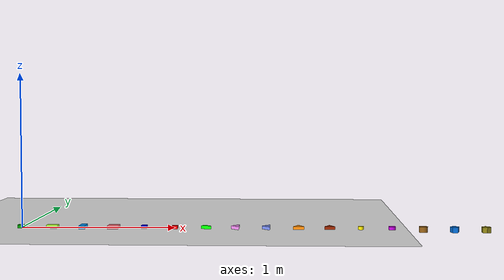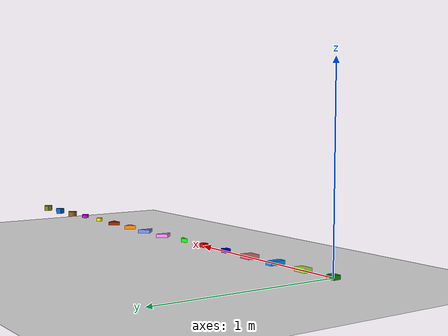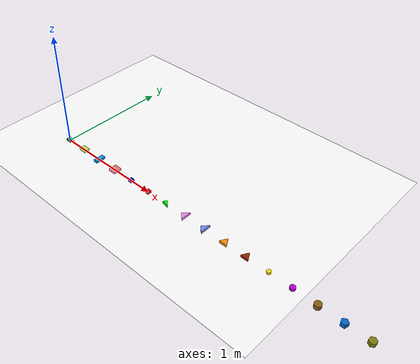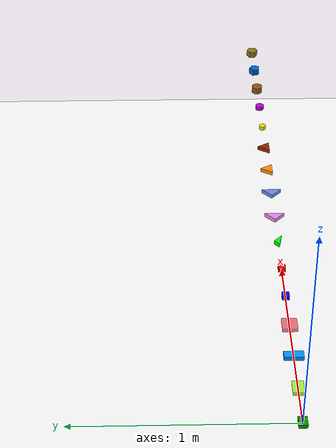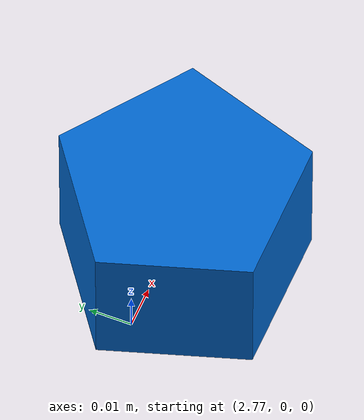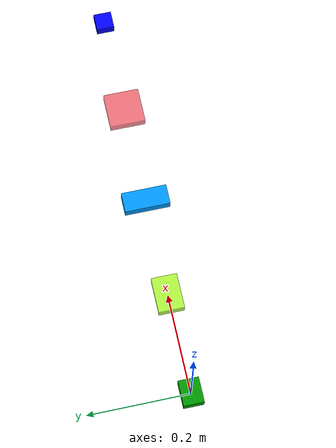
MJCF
<mujoco model="multi_objects">
    <compiler angle="radian" meshdir="meshes_mujoco/" />
    <size njmax="2000" nconmax="500" />
	<option timestep="0.002">
		<flag warmstart="enable"></flag>
	</option>
    <option gravity="0 0 -9.8"/>

    <asset>
        <mesh name="cylinder_0" file="cylinder_0.stl" />
        <mesh name="cylinder_1" file="cylinder_1.stl" />
        <mesh name="cylinder_2" file="cylinder_2.stl" />
        <mesh name="triangular_0" file="triangular_0.stl" />
        <mesh name="triangular_1" file="triangular_1.stl" />
        <mesh name="triangular_2" file="triangular_2.stl" />
        <mesh name="pentagonal" file="pentagonal.stl" />
        <mesh name="hexagonal" file="hexagonal.stl" />

        <!--Textures-->
        <texture name="floor_tex"   type="2d"       builtin="flat" rgb1="1 1 1" rgb2=".1 .2 .3" width="100" height="100" />

        <!--Materials-->
        <material name='floor_mat'      texture="floor_tex"  shininess="0.1" texrepeat="10 10" specular="0.7"  reflectance="0" />
    </asset>
    <worldbody>
        <!--Lighting parameters-->
        <light name="light3" mode="targetbody" target="box_link" directional="true" pos="1 1 3" />

        <!--Floor Property-->
        <geom name='floor' material="floor_mat" pos='0 0 0' size='2.5 2.5 0.1'  type='plane' />

        <body name="box_link" pos="0 0 0.435"/>
        <!--CUBE-->
        <body name="object_0" pos="0.0 0.0 0.0">
            <joint name="target_0_joint" type="free" limited="false" damping="0" armature="0."/>
            <geom name="target_0" pos="0 0 0" size="0.025 0.02 0.0175" type="box"
                rgba="0 0.6 0 1" condim="3" mass="0.02"
                solimp="0.9 0.95 0.001" solref="0.02 1.0" friction="0.1 0.1 0.002"/>
        </body>

        <body name="object_1" pos="0.2 0.0 0.0">
            <joint name="target_1_joint" type="free" limited="false" damping="0" armature="0."/>
            <geom name="target_1" pos="0 0 0" size="0.035 0.025 0.0175" type="box"
                rgba="0.6784 1.0 0.1843 0.87" condim="3" mass="0.02"
                solimp="0.9 0.95 0.001" solref="0.02 1.0" friction="0.1 0.1 0.002"/>
        </body>

        <body name="object_2" pos="0.4 0.0 0.0">
            <joint name="target_2_joint" type="free" limited="false" damping="0" armature="0."/>
            <geom name="target_2" pos="0 0 0" size="0.02 0.045 0.0175" type="box"
                rgba="0.0 0.6 1 1" condim="3" mass="0.02"
                solimp="0.9 0.95 0.001" solref="0.02 1.0" friction="0.1 0.1 0.002"/>
        </body>

        <body name="object_3" pos="0.6 0.0 0.0">
            <joint name="target_3_joint" type="free" limited="false" damping="0" armature="0."/>
            <geom name="target_3" pos="0 0 0" size="0.035 0.035 0.0175" type="box"
                rgba="0.95 0.25 0.3 0.7" condim="3" mass="0.02"
                solimp="0.9 0.95 0.001" solref="0.02 1.0" friction="0.1 0.1 0.002"/>
        </body>

        <body name="object_4" pos="0.8 0.0 0.0">
            <joint name="target_4_joint" type="free" limited="false" damping="0" armature="0."/>
            <geom name="target_4" pos="0 0 0" size="0.0175 0.0175 0.0175" type="box"
                rgba="0 0 1.0 1" condim="3" mass="0.02"
                solimp="0.9 0.95 0.001" solref="0.02 1.0" friction="0.1 0.1 0.002"/>
        </body>

        <body name="object_5" pos="1.0 0.0 0.0">
            <joint name="target_5_joint" type="free" limited="false" damping="0" armature="0."/>
            <geom name="target_5" pos="0 0 0" size="0.0175 0.0175 0.0175" type="box"
                rgba="1 0 0 1" condim="3" mass="0.02"
                solimp="0.9 0.95 0.001" solref="0.02 1.0" friction="0.1 0.1 0.002"/>
        </body>

        <body name="object_6" pos="1.2 0.0 0.0">
          <joint name="target_6_joint" type="free" limited="false" damping="0" armature="0."/>
          <inertial pos="0 0 0" mass="0.02" diaginertia="0.01 0.01 8e-4" />
          <geom pos="0 0 0" mesh="triangular_0" type="mesh" conaffinity="1" condim="6"
              rgba="0 1 0 1" friction="0.1 0.1 0.002" solref="0.02 1.0"/>
        </body>

        <body name="object_7" pos="1.4 0.0 0.0">
          <joint name="target_7_joint" type="free" limited="false" damping="0" armature="0."/>
          <inertial pos="0 0 0" mass="0.02" diaginertia="0.01 0.01 8e-4" />
          <geom pos="0 0 0" mesh="triangular_1" type="mesh" conaffinity="1" condim="6"
              rgba="0.93 0.545 0.93 1" friction="0.1 0.1 0.002" solref="0.02 1.0"/>
        </body>

        <body name="object_8" pos="1.6 0.0 0.0">
          <joint name="target_8_joint" type="free" limited="false" damping="0" armature="0."/>
          <inertial pos="0 0 0" mass="0.02" diaginertia="0.01 0.01 8e-4" />
          <geom pos="0 0 0" mesh="triangular_1" type="mesh" conaffinity="1" condim="6"
              rgba="0.46 0.545 0.93 1" friction="0.1 0.1 0.002" solref="0.02 1.0"/>
        </body>

        <body name="object_9" pos="1.8 0.0 0.0">
          <joint name="target_9_joint" type="free" limited="false" damping="0" armature="0."/>
          <inertial pos="0 0 0" mass="0.02" diaginertia="0.01 0.01 8e-4" />
          <geom pos="0 0 0" mesh="triangular_2" type="mesh" conaffinity="1" condim="6"
              rgba="1 0.557 0.03 1" friction="0.1 0.1 0.002" solref="0.02 1.0"/>
        </body>

        <body name="object_10" pos="2.0 0.0 0.0">
          <joint name="target_10_joint" type="free" limited="false" damping="0" armature="0."/>
          <inertial pos="0 0 0" mass="0.02" diaginertia="0.01 0.01 8e-4" />
          <geom pos="0 0 0" mesh="triangular_2" type="mesh" conaffinity="1" condim="6"
              rgba="0.607 0.145 0 1" friction="0.1 0.1 0.002" solref="0.02 1.0"/>
        </body>

        <body name="object_11" pos="2.2 0.0 0.0">
          <joint name="target_11_joint" type="free" limited="false" damping="0" armature="0."/>
          <inertial pos="0 0 0" mass="0.02" diaginertia="0.01 0.01 8e-4" />
          <geom pos="0 0 0" mesh="cylinder_0" type="mesh" conaffinity="1" condim="6"
              rgba="0.9686 0.902 0 1" friction="0.1 0.1 0.002" solref="0.02 1.0"/>
        </body>

        <body name="object_12" pos="2.4 0.0 0.0">
          <joint name="target_12_joint" type="free" limited="false" damping="0" armature="0."/>
          <inertial pos="0 0 0" mass="0.02" diaginertia="0.01 0.01 8e-4" />
          <geom pos="0 0 0" mesh="cylinder_2" type="mesh" conaffinity="1" condim="6"
              rgba="0.75 0.0 0.85 1" friction="0.1 0.1 0.002" solref="0.02 1.0"/>
        </body>

        <body name="object_13" pos="2.6 0.0 0.0">
          <joint name="target_13_joint" type="free" limited="false" damping="0" armature="0."/>
          <inertial pos="0 0 0" mass="0.02" diaginertia="0.01 0.01 8e-4" />
          <geom pos="0 0 0" mesh="cylinder_1" type="mesh" conaffinity="1" condim="6"
              rgba="0.557 0.357 0.082 1" friction="0.1 0.1 0.002" solref="0.02 1.0"/>
        </body>

        <body name="object_14" pos="2.8 0.0 0.0">
          <joint name="target_14_joint" type="free" limited="false" damping="0" armature="0."/>
          <inertial pos="0 0 0" mass="0.02" diaginertia="0.01 0.01 8e-4" />
          <geom pos="0 0 0" mesh="pentagonal" type="mesh" conaffinity="1" condim="6"
              rgba="0 0.4 0.8 0.9" friction="0.1 0.1 0.002" solref="0.02 1.0"/>
        </body>

        <body name="object_15" pos="3.0 0.0 0.0">
          <joint name="target_15_joint" type="free" limited="false" damping="0" armature="0."/>
          <inertial pos="0 0 0" mass="0.02" diaginertia="0.01 0.01 8e-4" />
          <geom pos="0 0 0" mesh="hexagonal" type="mesh" conaffinity="1" condim="6"
              rgba="0.527 0.488 0.075 1.0" friction="0.1 0.1 0.002" solref="0.02 1.0"/>
        </body>

        <!--CAMERA-->
        <!--camera mode="fixed" name="rlview" pos="0.0 0.1 1.5" euler="0 0 0"/-->
        <camera mode="fixed" name="frontview" pos="0.0 0.15 0.25" quat="0.966 -0.259 0 0"/>
        <!--camera mode="fixed" name="rlview" pos="0.0 0.95 2.2" quat="0.966 -0.259 0 0"/-->
        <!--camera mode="fixed" name="rlview" pos="0.0 1.5 2.0" quat="0.9238795325112867 -0.3826834323650898 0 0"/-->

    </worldbody>
</mujoco>
